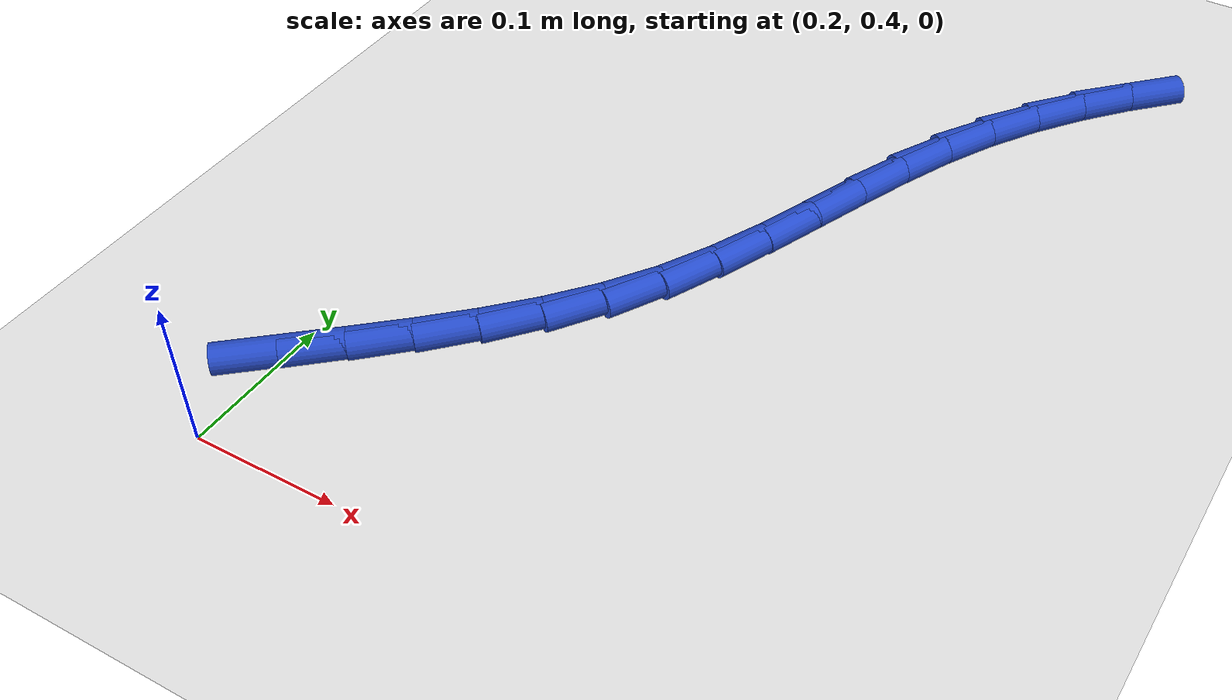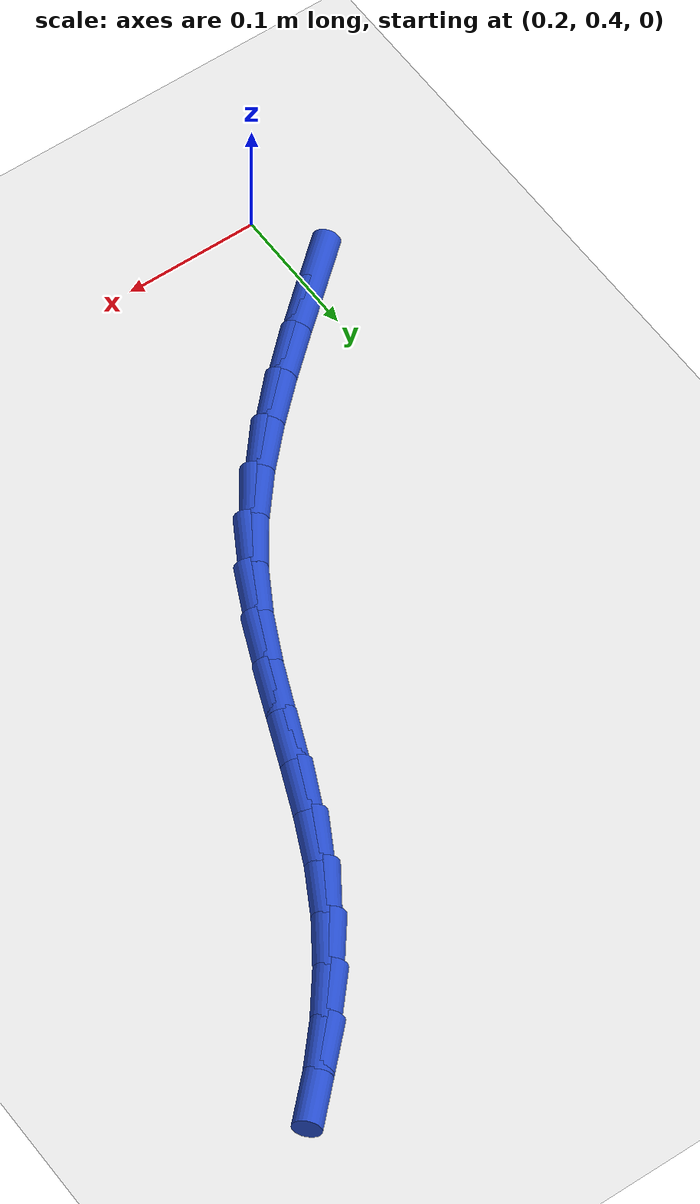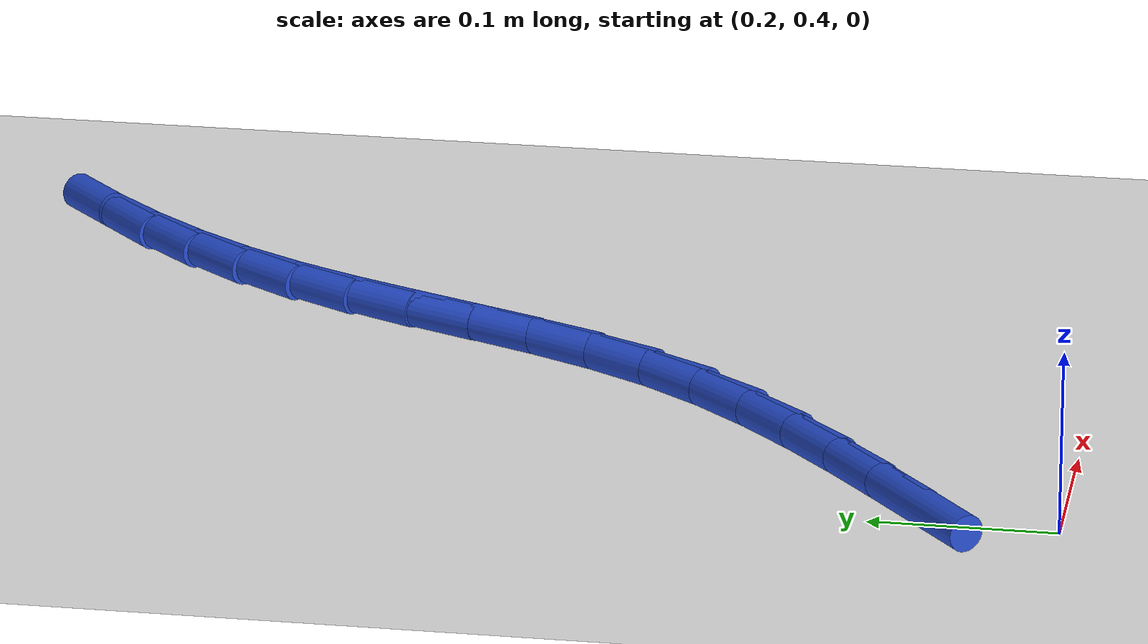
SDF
<sdf version="1.6">
 <world name="default">
  <model name="ground_plane">
   <static>1</static>
   <link name="link">
    <collision name="collision">
     <geometry><plane><normal>0 0 1</normal><size>100 100</size></plane></geometry>
     <surface><friction><ode><mu>100</mu><mu2>50</mu2></ode></friction></surface>
    </collision>
    <visual name="visual">
     <cast_shadows>0</cast_shadows>
     <geometry><plane><normal>0 0 1</normal><size>100 100</size></plane></geometry>
     <material>
      <script><uri>file://media/materials/scripts/gazebo.material</uri><name>Gazebo/WhiteGlow</name></script>
     </material>
    </visual>
   </link>
  </model>
  <model name="line">
   <link name="link_14">
    <pose>0.2005343713233674 0.4707390192221505 0.01 0 1.57 0.6967898411410958</pose>
    <collision name="collision">
     <geometry><cylinder><radius>0.01</radius><length>0.08</length></cylinder></geometry>
    </collision>
    <visual name="visual">
     <material>
      <script><name>Gazebo/Blue</name><uri>file://media/materials/scripts/gazebo.material</uri></script>
     </material>
     <geometry><cylinder><radius>0.01</radius><length>0.08</length></cylinder></geometry>
    </visual>
   </link>
   <link name="link_15">
    <pose>0.2309350498708123 0.4961787798942602 0.01 0 1.57 0.7092831926135458</pose>
    <collision name="collision">
     <geometry><cylinder><radius>0.01</radius><length>0.08</length></cylinder></geometry>
    </collision>
    <visual name="visual">
     <material>
      <script><name>Gazebo/Blue</name><uri>file://media/materials/scripts/gazebo.material</uri></script>
     </material>
     <geometry><cylinder><radius>0.01</radius><length>0.08</length></cylinder></geometry>
    </visual>
   </link>
   <link name="link_16">
    <pose>0.26099672545759833 0.5219802066633767 0.01 0 1.57 0.7396673547275344</pose>
    <collision name="collision">
     <geometry><cylinder><radius>0.01</radius><length>0.08</length></cylinder></geometry>
    </collision>
    <visual name="visual">
     <material>
      <script><name>Gazebo/Blue</name><uri>file://media/materials/scripts/gazebo.material</uri></script>
     </material>
     <geometry><cylinder><radius>0.01</radius><length>0.08</length></cylinder></geometry>
    </visual>
   </link>
   <link name="link_17">
    <pose>0.29008780159809733 0.5485252241406796 0.01 0 1.57 0.7886913806652952</pose>
    <collision name="collision">
     <geometry><cylinder><radius>0.01</radius><length>0.08</length></cylinder></geometry>
    </collision>
    <visual name="visual">
     <material>
      <script><name>Gazebo/Blue</name><uri>file://media/materials/scripts/gazebo.material</uri></script>
     </material>
     <geometry><cylinder><radius>0.01</radius><length>0.08</length></cylinder></geometry>
    </visual>
   </link>
   <link name="link_18">
    <pose>0.31757668180668125 0.5761957569373483 0.01 0 1.57 0.8573418391484795</pose>
    <collision name="collision">
     <geometry><cylinder><radius>0.01</radius><length>0.08</length></cylinder></geometry>
    </collision>
    <visual name="visual">
     <material>
      <script><name>Gazebo/Blue</name><uri>file://media/materials/scripts/gazebo.material</uri></script>
     </material>
     <geometry><cylinder><radius>0.01</radius><length>0.08</length></cylinder></geometry>
    </visual>
   </link>
   <link name="link_19">
    <pose>0.34283176959772227 0.6053737296645627 0.01 0 1.57 0.9463232186033501</pose>
    <collision name="collision">
     <geometry><cylinder><radius>0.01</radius><length>0.08</length></cylinder></geometry>
    </collision>
    <visual name="visual">
     <material>
      <script><name>Gazebo/Blue</name><uri>file://media/materials/scripts/gazebo.material</uri></script>
     </material>
     <geometry><cylinder><radius>0.01</radius><length>0.08</length></cylinder></geometry>
    </visual>
   </link>
   <link name="link_20">
    <pose>0.36522148282710876 0.6364410575227002 0.01 0 1.57 1.0460938358535734</pose>
    <collision name="collision">
     <geometry><cylinder><radius>0.01</radius><length>0.08</length></cylinder></geometry>
    </collision>
    <visual name="visual">
     <material>
      <script><name>Gazebo/Blue</name><uri>file://media/materials/scripts/gazebo.material</uri></script>
     </material>
     <geometry><cylinder><radius>0.01</radius><length>0.08</length></cylinder></geometry>
    </visual>
   </link>
   <link name="link_21">
    <pose>0.38440731043031406 0.6695873445298335 0.01 0 1.57 1.1228051262349183</pose>
    <collision name="collision">
     <geometry><cylinder><radius>0.01</radius><length>0.08</length></cylinder></geometry>
    </collision>
    <visual name="visual">
     <material>
      <script><name>Gazebo/Blue</name><uri>file://media/materials/scripts/gazebo.material</uri></script>
     </material>
     <geometry><cylinder><radius>0.01</radius><length>0.08</length></cylinder></geometry>
    </visual>
   </link>
   <link name="link_22">
    <pose>0.401097027031503 0.7043156293898974 0.01 0 1.57 1.1694198163277236</pose>
    <collision name="collision">
     <geometry><cylinder><radius>0.01</radius><length>0.08</length></cylinder></geometry>
    </collision>
    <visual name="visual">
     <material>
      <script><name>Gazebo/Blue</name><uri>file://media/materials/scripts/gazebo.material</uri></script>
     </material>
     <geometry><cylinder><radius>0.01</radius><length>0.08</length></cylinder></geometry>
    </visual>
   </link>
   <link name="link_23">
    <pose>0.41623180012360517 0.7399758000469593 0.01 0 1.57 1.1868356369291502</pose>
    <collision name="collision">
     <geometry><cylinder><radius>0.01</radius><length>0.08</length></cylinder></geometry>
    </collision>
    <visual name="visual">
     <material>
      <script><name>Gazebo/Blue</name><uri>file://media/materials/scripts/gazebo.material</uri></script>
     </material>
     <geometry><cylinder><radius>0.01</radius><length>0.08</length></cylinder></geometry>
    </visual>
   </link>
   <link name="link_24">
    <pose>0.4307527971995502 0.775917744445086 0.01 0 1.57 1.1753813466987277</pose>
    <collision name="collision">
     <geometry><cylinder><radius>0.01</radius><length>0.08</length></cylinder></geometry>
    </collision>
    <visual name="visual">
     <material>
      <script><name>Gazebo/Blue</name><uri>file://media/materials/scripts/gazebo.material</uri></script>
     </material>
     <geometry><cylinder><radius>0.01</radius><length>0.08</length></cylinder></geometry>
    </visual>
   </link>
   <link name="link_25">
    <pose>0.4456011857522678 0.8114913505283454 0.01 0 1.57 1.1343781157120894</pose>
    <collision name="collision">
     <geometry><cylinder><radius>0.01</radius><length>0.08</length></cylinder></geometry>
    </collision>
    <visual name="visual">
     <material>
      <script><name>Gazebo/Blue</name><uri>file://media/materials/scripts/gazebo.material</uri></script>
     </material>
     <geometry><cylinder><radius>0.01</radius><length>0.08</length></cylinder></geometry>
    </visual>
   </link>
   <link name="link_26">
    <pose>0.46171813327468786 0.8460465062408045 0.01 0 1.57 1.0635134181555808</pose>
    <collision name="collision">
     <geometry><cylinder><radius>0.01</radius><length>0.08</length></cylinder></geometry>
    </collision>
    <visual name="visual">
     <material>
      <script><name>Gazebo/Blue</name><uri>file://media/materials/scripts/gazebo.material</uri></script>
     </material>
     <geometry><cylinder><radius>0.01</radius><length>0.08</length></cylinder></geometry>
    </visual>
   </link>
   <link name="link_27">
    <pose>0.48000984480563597 0.8789572899281481 0.01 0 1.57 0.9811165591821157</pose>
    <collision name="collision">
     <geometry><cylinder><radius>0.01</radius><length>0.08</length></cylinder></geometry>
    </collision>
    <visual name="visual">
     <material>
      <script><name>Gazebo/Blue</name><uri>file://media/materials/scripts/gazebo.material</uri></script>
     </material>
     <geometry><cylinder><radius>0.01</radius><length>0.08</length></cylinder></geometry>
    </visual>
   </link>
   <link name="link_28">
    <pose>0.5007868933690556 0.9100098956763866 0.01 0 1.57 0.904138031027709</pose>
    <collision name="collision">
     <geometry><cylinder><radius>0.01</radius><length>0.08</length></cylinder></geometry>
    </collision>
    <visual name="visual">
     <material>
      <script><name>Gazebo/Blue</name><uri>file://media/materials/scripts/gazebo.material</uri></script>
     </material>
     <geometry><cylinder><radius>0.01</radius><length>0.08</length></cylinder></geometry>
    </visual>
   </link>
   <link name="link_29">
    <pose>0.5238611774957123 0.9393355487364115 0.01 0 1.57 0.8339819891368229</pose>
    <collision name="collision">
     <geometry><cylinder><radius>0.01</radius><length>0.08</length></cylinder></geometry>
    </collision>
    <visual name="visual">
     <material>
      <script><name>Gazebo/Blue</name><uri>file://media/materials/scripts/gazebo.material</uri></script>
     </material>
     <geometry><cylinder><radius>0.01</radius><length>0.08</length></cylinder></geometry>
    </visual>
   </link>
   <link name="link_30">
    <pose>0.5490292168546135 0.9670761149406167 0.01 0 1.57 0.771136930431407</pose>
    <collision name="collision">
     <geometry><cylinder><radius>0.01</radius><length>0.08</length></cylinder></geometry>
    </collision>
    <visual name="visual">
     <material>
      <script><name>Gazebo/Blue</name><uri>file://media/materials/scripts/gazebo.material</uri></script>
     </material>
     <geometry><cylinder><radius>0.01</radius><length>0.08</length></cylinder></geometry>
    </visual>
   </link>
  </model>
 </world>
</sdf>
